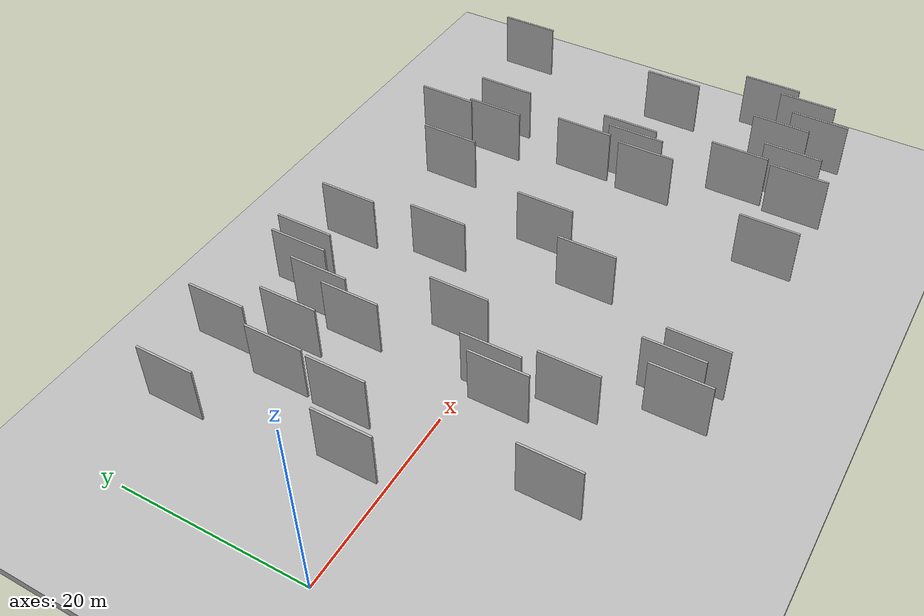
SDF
<?xml version="1.0" encoding="utf-8"?>

<sdf version="1.6">

   <world name="default">

      <gui fullscreen="0">

         <camera name="user_camera">

            <pose>-15 0 4.57585 0 0 0</pose>

            <view_controller>orbit</view_controller>

         </camera>

      </gui>

      <scene>

         <sky>

           <clouds>

             <speed>12</speed>

           </clouds>

         </sky>

         <ambient>0.4 0.4 0.4 1</ambient>

         <background>0.7 0.7 0.7 1</background>

         <shadows>1</shadows>

      </scene>

      <gravity>0 0 -9.8066</gravity>

      <magnetic_field>6e-06 2.3e-05 -4.2e-05</magnetic_field>

      <physics default="0" name="default_physics" type="ode">

         <ode>

            <solver>

               <type>quick</type>

               <iters>10</iters>

               <sor>1.0</sor>

               <use_dynamic_moi_rescaling>0</use_dynamic_moi_rescaling>

            </solver>

            <constraints>

               <cfm>0</cfm>

               <erp>0.2</erp>

               <contact_max_correcting_vel>100</contact_max_correcting_vel>

               <contact_surface_layer>0.001</contact_surface_layer>

            </constraints>

         </ode>

         <max_step_size>0.004</max_step_size>

         <real_time_factor>1</real_time_factor>

         <real_time_update_rate>250</real_time_update_rate>

      </physics>

      <light name="sun" type="directional">

         <cast_shadows>1</cast_shadows>

         <pose>0 0 10 0 0 0</pose>

         <diffuse>0.8 0.8 0.8 1</diffuse>

         <specular>0.2 0.2 0.2 1</specular>

         <attenuation>

            <range>1000</range>

            <constant>0.9</constant>

            <linear>0.01</linear>

            <quadratic>0.001</quadratic>

         </attenuation>

         <direction>-0.5 0.1 -0.9</direction>

      </light>

      <include>

         <name>ground_plane_1</name>

         <uri>model://HANNAS_ground_plane</uri>

         <pose>0 0 0  0 0 0</pose>

      </include>

      <include>

         <name>ground_plane_2</name>

         <uri>model://HANNAS_ground_plane</uri>

         <pose>100 0 0  0 0 0</pose>

      </include>

      <model name="HANNAS_wall_1">

         <static>1</static>

         <pose frame="">19.9747 -6.0298 5.0 0.000000 0.000000 1.570796</pose>

         <link name="link">

            <pose frame="">0 0 3.00 0 0 0</pose>

            <collision name="collision">

               <geometry>

                  <box>

                     <size>6.00 0.2 6.00</size>

                  </box>

               </geometry>

               <max_contacts>10</max_contacts>

               <surface>

                  <contact>

                     <ode/>

                  </contact>

                  <bounce/>

                  <friction>

                     <torsional>

                        <ode/>

                     </torsional>

                     <ode/>

                  </friction>

               </surface>

            </collision>

            <visual name="visual">

               <cast_shadows>0</cast_shadows>

               <geometry>

                  <box>

                     <size>6.00 0.2 6.00</size>

                  </box>

               </geometry>

               <material>

                  <script>

                     <uri>model://HANNAS_wall/materials/scripts</uri>

                     <uri>model://HANNAS_wall/materials/textures</uri>

                     <name>vrc/HANNAS_wall</name>

                  </script>

               </material>

            </visual>

            <self_collide>0</self_collide>

            <enable_wind>0</enable_wind>

            <kinematic>0</kinematic>

         </link>

      </model>

      <model name="HANNAS_wall_2">

         <static>1</static>

         <pose frame="">33.4990 8.2690 5.0 0.000000 0.000000 1.570796</pose>

         <link name="link">

            <pose frame="">0 0 3.00 0 0 0</pose>

            <collision name="collision">

               <geometry>

                  <box>

                     <size>6.00 0.2 6.00</size>

                  </box>

               </geometry>

               <max_contacts>10</max_contacts>

               <surface>

                  <contact>

                     <ode/>

                  </contact>

                  <bounce/>

                  <friction>

                     <torsional>

                        <ode/>

                     </torsional>

                     <ode/>

                  </friction>

               </surface>

            </collision>

            <visual name="visual">

               <cast_shadows>0</cast_shadows>

               <geometry>

                  <box>

                     <size>6.00 0.2 6.00</size>

                  </box>

               </geometry>

               <material>

                  <script>

                     <uri>model://HANNAS_wall/materials/scripts</uri>

                     <uri>model://HANNAS_wall/materials/textures</uri>

                     <name>vrc/HANNAS_wall</name>

                  </script>

               </material>

            </visual>

            <self_collide>0</self_collide>

            <enable_wind>0</enable_wind>

            <kinematic>0</kinematic>

         </link>

      </model>

      <model name="HANNAS_wall_3">

         <static>1</static>

         <pose frame="">36.4372 -6.0636 5.0 0.000000 0.000000 1.570796</pose>

         <link name="link">

            <pose frame="">0 0 3.00 0 0 0</pose>

            <collision name="collision">

               <geometry>

                  <box>

                     <size>6.00 0.2 6.00</size>

                  </box>

               </geometry>

               <max_contacts>10</max_contacts>

               <surface>

                  <contact>

                     <ode/>

                  </contact>

                  <bounce/>

                  <friction>

                     <torsional>

                        <ode/>

                     </torsional>

                     <ode/>

                  </friction>

               </surface>

            </collision>

            <visual name="visual">

               <cast_shadows>0</cast_shadows>

               <geometry>

                  <box>

                     <size>6.00 0.2 6.00</size>

                  </box>

               </geometry>

               <material>

                  <script>

                     <uri>model://HANNAS_wall/materials/scripts</uri>

                     <uri>model://HANNAS_wall/materials/textures</uri>

                     <name>vrc/HANNAS_wall</name>

                  </script>

               </material>

            </visual>

            <self_collide>0</self_collide>

            <enable_wind>0</enable_wind>

            <kinematic>0</kinematic>

         </link>

      </model>

      <model name="HANNAS_wall_4">

         <static>1</static>

         <pose frame="">57.0335 -13.0750 5.0 0.000000 0.000000 1.570796</pose>

         <link name="link">

            <pose frame="">0 0 3.00 0 0 0</pose>

            <collision name="collision">

               <geometry>

                  <box>

                     <size>6.00 0.2 6.00</size>

                  </box>

               </geometry>

               <max_contacts>10</max_contacts>

               <surface>

                  <contact>

                     <ode/>

                  </contact>

                  <bounce/>

                  <friction>

                     <torsional>

                        <ode/>

                     </torsional>

                     <ode/>

                  </friction>

               </surface>

            </collision>

            <visual name="visual">

               <cast_shadows>0</cast_shadows>

               <geometry>

                  <box>

                     <size>6.00 0.2 6.00</size>

                  </box>

               </geometry>

               <material>

                  <script>

                     <uri>model://HANNAS_wall/materials/scripts</uri>

                     <uri>model://HANNAS_wall/materials/textures</uri>

                     <name>vrc/HANNAS_wall</name>

                  </script>

               </material>

            </visual>

            <self_collide>0</self_collide>

            <enable_wind>0</enable_wind>

            <kinematic>0</kinematic>

         </link>

      </model>

      <model name="HANNAS_wall_5">

         <static>1</static>

         <pose frame="">17.3988 13.8152 5.0 0.000000 0.000000 1.570796</pose>

         <link name="link">

            <pose frame="">0 0 3.00 0 0 0</pose>

            <collision name="collision">

               <geometry>

                  <box>

                     <size>6.00 0.2 6.00</size>

                  </box>

               </geometry>

               <max_contacts>10</max_contacts>

               <surface>

                  <contact>

                     <ode/>

                  </contact>

                  <bounce/>

                  <friction>

                     <torsional>

                        <ode/>

                     </torsional>

                     <ode/>

                  </friction>

               </surface>

            </collision>

            <visual name="visual">

               <cast_shadows>0</cast_shadows>

               <geometry>

                  <box>

                     <size>6.00 0.2 6.00</size>

                  </box>

               </geometry>

               <material>

                  <script>

                     <uri>model://HANNAS_wall/materials/scripts</uri>

                     <uri>model://HANNAS_wall/materials/textures</uri>

                     <name>vrc/HANNAS_wall</name>

                  </script>

               </material>

            </visual>

            <self_collide>0</self_collide>

            <enable_wind>0</enable_wind>

            <kinematic>0</kinematic>

         </link>

      </model>

      <model name="HANNAS_wall_6">

         <static>1</static>

         <pose frame="">32.0261 17.6014 5.0 0.000000 0.000000 1.570796</pose>

         <link name="link">

            <pose frame="">0 0 3.00 0 0 0</pose>

            <collision name="collision">

               <geometry>

                  <box>

                     <size>6.00 0.2 6.00</size>

                  </box>

               </geometry>

               <max_contacts>10</max_contacts>

               <surface>

                  <contact>

                     <ode/>

                  </contact>

                  <bounce/>

                  <friction>

                     <torsional>

                        <ode/>

                     </torsional>

                     <ode/>

                  </friction>

               </surface>

            </collision>

            <visual name="visual">

               <cast_shadows>0</cast_shadows>

               <geometry>

                  <box>

                     <size>6.00 0.2 6.00</size>

                  </box>

               </geometry>

               <material>

                  <script>

                     <uri>model://HANNAS_wall/materials/scripts</uri>

                     <uri>model://HANNAS_wall/materials/textures</uri>

                     <name>vrc/HANNAS_wall</name>

                  </script>

               </material>

            </visual>

            <self_collide>0</self_collide>

            <enable_wind>0</enable_wind>

            <kinematic>0</kinematic>

         </link>

      </model>

      <model name="HANNAS_wall_7">

         <static>1</static>

         <pose frame="">55.4199 13.1233 5.0 0.000000 0.000000 1.570796</pose>

         <link name="link">

            <pose frame="">0 0 3.00 0 0 0</pose>

            <collision name="collision">

               <geometry>

                  <box>

                     <size>6.00 0.2 6.00</size>

                  </box>

               </geometry>

               <max_contacts>10</max_contacts>

               <surface>

                  <contact>

                     <ode/>

                  </contact>

                  <bounce/>

                  <friction>

                     <torsional>

                        <ode/>

                     </torsional>

                     <ode/>

                  </friction>

               </surface>

            </collision>

            <visual name="visual">

               <cast_shadows>0</cast_shadows>

               <geometry>

                  <box>

                     <size>6.00 0.2 6.00</size>

                  </box>

               </geometry>

               <material>

                  <script>

                     <uri>model://HANNAS_wall/materials/scripts</uri>

                     <uri>model://HANNAS_wall/materials/textures</uri>

                     <name>vrc/HANNAS_wall</name>

                  </script>

               </material>

            </visual>

            <self_collide>0</self_collide>

            <enable_wind>0</enable_wind>

            <kinematic>0</kinematic>

         </link>

      </model>

      <model name="HANNAS_wall_8">

         <static>1</static>

         <pose frame="">21.4446 -4.4740 5.0 0.000000 0.000000 1.570796</pose>

         <link name="link">

            <pose frame="">0 0 3.00 0 0 0</pose>

            <collision name="collision">

               <geometry>

                  <box>

                     <size>6.00 0.2 6.00</size>

                  </box>

               </geometry>

               <max_contacts>10</max_contacts>

               <surface>

                  <contact>

                     <ode/>

                  </contact>

                  <bounce/>

                  <friction>

                     <torsional>

                        <ode/>

                     </torsional>

                     <ode/>

                  </friction>

               </surface>

            </collision>

            <visual name="visual">

               <cast_shadows>0</cast_shadows>

               <geometry>

                  <box>

                     <size>6.00 0.2 6.00</size>

                  </box>

               </geometry>

               <material>

                  <script>

                     <uri>model://HANNAS_wall/materials/scripts</uri>

                     <uri>model://HANNAS_wall/materials/textures</uri>

                     <name>vrc/HANNAS_wall</name>

                  </script>

               </material>

            </visual>

            <self_collide>0</self_collide>

            <enable_wind>0</enable_wind>

            <kinematic>0</kinematic>

         </link>

      </model>

      <model name="HANNAS_wall_9">

         <static>1</static>

         <pose frame="">65.5510 -2.1626 5.0 0.000000 0.000000 1.570796</pose>

         <link name="link">

            <pose frame="">0 0 3.00 0 0 0</pose>

            <collision name="collision">

               <geometry>

                  <box>

                     <size>6.00 0.2 6.00</size>

                  </box>

               </geometry>

               <max_contacts>10</max_contacts>

               <surface>

                  <contact>

                     <ode/>

                  </contact>

                  <bounce/>

                  <friction>

                     <torsional>

                        <ode/>

                     </torsional>

                     <ode/>

                  </friction>

               </surface>

            </collision>

            <visual name="visual">

               <cast_shadows>0</cast_shadows>

               <geometry>

                  <box>

                     <size>6.00 0.2 6.00</size>

                  </box>

               </geometry>

               <material>

                  <script>

                     <uri>model://HANNAS_wall/materials/scripts</uri>

                     <uri>model://HANNAS_wall/materials/textures</uri>

                     <name>vrc/HANNAS_wall</name>

                  </script>

               </material>

            </visual>

            <self_collide>0</self_collide>

            <enable_wind>0</enable_wind>

            <kinematic>0</kinematic>

         </link>

      </model>

      <model name="HANNAS_wall_10">

         <static>1</static>

         <pose frame="">20.6326 9.4840 5.0 0.000000 0.000000 1.570796</pose>

         <link name="link">

            <pose frame="">0 0 3.00 0 0 0</pose>

            <collision name="collision">

               <geometry>

                  <box>

                     <size>6.00 0.2 6.00</size>

                  </box>

               </geometry>

               <max_contacts>10</max_contacts>

               <surface>

                  <contact>

                     <ode/>

                  </contact>

                  <bounce/>

                  <friction>

                     <torsional>

                        <ode/>

                     </torsional>

                     <ode/>

                  </friction>

               </surface>

            </collision>

            <visual name="visual">

               <cast_shadows>0</cast_shadows>

               <geometry>

                  <box>

                     <size>6.00 0.2 6.00</size>

                  </box>

               </geometry>

               <material>

                  <script>

                     <uri>model://HANNAS_wall/materials/scripts</uri>

                     <uri>model://HANNAS_wall/materials/textures</uri>

                     <name>vrc/HANNAS_wall</name>

                  </script>

               </material>

            </visual>

            <self_collide>0</self_collide>

            <enable_wind>0</enable_wind>

            <kinematic>0</kinematic>

         </link>

      </model>

      <model name="HANNAS_wall_11">

         <static>1</static>

         <pose frame="">40.2192 0.3089 5.0 0.000000 0.000000 1.570796</pose>

         <link name="link">

            <pose frame="">0 0 3.00 0 0 0</pose>

            <collision name="collision">

               <geometry>

                  <box>

                     <size>6.00 0.2 6.00</size>

                  </box>

               </geometry>

               <max_contacts>10</max_contacts>

               <surface>

                  <contact>

                     <ode/>

                  </contact>

                  <bounce/>

                  <friction>

                     <torsional>

                        <ode/>

                     </torsional>

                     <ode/>

                  </friction>

               </surface>

            </collision>

            <visual name="visual">

               <cast_shadows>0</cast_shadows>

               <geometry>

                  <box>

                     <size>6.00 0.2 6.00</size>

                  </box>

               </geometry>

               <material>

                  <script>

                     <uri>model://HANNAS_wall/materials/scripts</uri>

                     <uri>model://HANNAS_wall/materials/textures</uri>

                     <name>vrc/HANNAS_wall</name>

                  </script>

               </material>

            </visual>

            <self_collide>0</self_collide>

            <enable_wind>0</enable_wind>

            <kinematic>0</kinematic>

         </link>

      </model>

      <model name="HANNAS_wall_12">

         <static>1</static>

         <pose frame="">26.2267 -19.8197 5.0 0.000000 0.000000 1.570796</pose>

         <link name="link">

            <pose frame="">0 0 3.00 0 0 0</pose>

            <collision name="collision">

               <geometry>

                  <box>

                     <size>6.00 0.2 6.00</size>

                  </box>

               </geometry>

               <max_contacts>10</max_contacts>

               <surface>

                  <contact>

                     <ode/>

                  </contact>

                  <bounce/>

                  <friction>

                     <torsional>

                        <ode/>

                     </torsional>

                     <ode/>

                  </friction>

               </surface>

            </collision>

            <visual name="visual">

               <cast_shadows>0</cast_shadows>

               <geometry>

                  <box>

                     <size>6.00 0.2 6.00</size>

                  </box>

               </geometry>

               <material>

                  <script>

                     <uri>model://HANNAS_wall/materials/scripts</uri>

                     <uri>model://HANNAS_wall/materials/textures</uri>

                     <name>vrc/HANNAS_wall</name>

                  </script>

               </material>

            </visual>

            <self_collide>0</self_collide>

            <enable_wind>0</enable_wind>

            <kinematic>0</kinematic>

         </link>

      </model>

      <model name="HANNAS_wall_13">

         <static>1</static>

         <pose frame="">21.9411 13.8103 5.0 0.000000 0.000000 1.570796</pose>

         <link name="link">

            <pose frame="">0 0 3.00 0 0 0</pose>

            <collision name="collision">

               <geometry>

                  <box>

                     <size>6.00 0.2 6.00</size>

                  </box>

               </geometry>

               <max_contacts>10</max_contacts>

               <surface>

                  <contact>

                     <ode/>

                  </contact>

                  <bounce/>

                  <friction>

                     <torsional>

                        <ode/>

                     </torsional>

                     <ode/>

                  </friction>

               </surface>

            </collision>

            <visual name="visual">

               <cast_shadows>0</cast_shadows>

               <geometry>

                  <box>

                     <size>6.00 0.2 6.00</size>

                  </box>

               </geometry>

               <material>

                  <script>

                     <uri>model://HANNAS_wall/materials/scripts</uri>

                     <uri>model://HANNAS_wall/materials/textures</uri>

                     <name>vrc/HANNAS_wall</name>

                  </script>

               </material>

            </visual>

            <self_collide>0</self_collide>

            <enable_wind>0</enable_wind>

            <kinematic>0</kinematic>

         </link>

      </model>

      <model name="HANNAS_wall_14">

         <static>1</static>

         <pose frame="">24.0926 17.6528 5.0 0.000000 0.000000 1.570796</pose>

         <link name="link">

            <pose frame="">0 0 3.00 0 0 0</pose>

            <collision name="collision">

               <geometry>

                  <box>

                     <size>6.00 0.2 6.00</size>

                  </box>

               </geometry>

               <max_contacts>10</max_contacts>

               <surface>

                  <contact>

                     <ode/>

                  </contact>

                  <bounce/>

                  <friction>

                     <torsional>

                        <ode/>

                     </torsional>

                     <ode/>

                  </friction>

               </surface>

            </collision>

            <visual name="visual">

               <cast_shadows>0</cast_shadows>

               <geometry>

                  <box>

                     <size>6.00 0.2 6.00</size>

                  </box>

               </geometry>

               <material>

                  <script>

                     <uri>model://HANNAS_wall/materials/scripts</uri>

                     <uri>model://HANNAS_wall/materials/textures</uri>

                     <name>vrc/HANNAS_wall</name>

                  </script>

               </material>

            </visual>

            <self_collide>0</self_collide>

            <enable_wind>0</enable_wind>

            <kinematic>0</kinematic>

         </link>

      </model>

      <model name="HANNAS_wall_15">

         <static>1</static>

         <pose frame="">47.7738 -19.5898 5.0 0.000000 0.000000 1.570796</pose>

         <link name="link">

            <pose frame="">0 0 3.00 0 0 0</pose>

            <collision name="collision">

               <geometry>

                  <box>

                     <size>6.00 0.2 6.00</size>

                  </box>

               </geometry>

               <max_contacts>10</max_contacts>

               <surface>

                  <contact>

                     <ode/>

                  </contact>

                  <bounce/>

                  <friction>

                     <torsional>

                        <ode/>

                     </torsional>

                     <ode/>

                  </friction>

               </surface>

            </collision>

            <visual name="visual">

               <cast_shadows>0</cast_shadows>

               <geometry>

                  <box>

                     <size>6.00 0.2 6.00</size>

                  </box>

               </geometry>

               <material>

                  <script>

                     <uri>model://HANNAS_wall/materials/scripts</uri>

                     <uri>model://HANNAS_wall/materials/textures</uri>

                     <name>vrc/HANNAS_wall</name>

                  </script>

               </material>

            </visual>

            <self_collide>0</self_collide>

            <enable_wind>0</enable_wind>

            <kinematic>0</kinematic>

         </link>

      </model>

      <model name="HANNAS_wall_16">

         <static>1</static>

         <pose frame="">52.3528 -4.7699 5.0 0.000000 0.000000 1.570796</pose>

         <link name="link">

            <pose frame="">0 0 3.00 0 0 0</pose>

            <collision name="collision">

               <geometry>

                  <box>

                     <size>6.00 0.2 6.00</size>

                  </box>

               </geometry>

               <max_contacts>10</max_contacts>

               <surface>

                  <contact>

                     <ode/>

                  </contact>

                  <bounce/>

                  <friction>

                     <torsional>

                        <ode/>

                     </torsional>

                     <ode/>

                  </friction>

               </surface>

            </collision>

            <visual name="visual">

               <cast_shadows>0</cast_shadows>

               <geometry>

                  <box>

                     <size>6.00 0.2 6.00</size>

                  </box>

               </geometry>

               <material>

                  <script>

                     <uri>model://HANNAS_wall/materials/scripts</uri>

                     <uri>model://HANNAS_wall/materials/textures</uri>

                     <name>vrc/HANNAS_wall</name>

                  </script>

               </material>

            </visual>

            <self_collide>0</self_collide>

            <enable_wind>0</enable_wind>

            <kinematic>0</kinematic>

         </link>

      </model>

      <model name="HANNAS_wall_17">

         <static>1</static>

         <pose frame="">69.9324 -11.8928 5.0 0.000000 0.000000 1.570796</pose>

         <link name="link">

            <pose frame="">0 0 3.00 0 0 0</pose>

            <collision name="collision">

               <geometry>

                  <box>

                     <size>6.00 0.2 6.00</size>

                  </box>

               </geometry>

               <max_contacts>10</max_contacts>

               <surface>

                  <contact>

                     <ode/>

                  </contact>

                  <bounce/>

                  <friction>

                     <torsional>

                        <ode/>

                     </torsional>

                     <ode/>

                  </friction>

               </surface>

            </collision>

            <visual name="visual">

               <cast_shadows>0</cast_shadows>

               <geometry>

                  <box>

                     <size>6.00 0.2 6.00</size>

                  </box>

               </geometry>

               <material>

                  <script>

                     <uri>model://HANNAS_wall/materials/scripts</uri>

                     <uri>model://HANNAS_wall/materials/textures</uri>

                     <name>vrc/HANNAS_wall</name>

                  </script>

               </material>

            </visual>

            <self_collide>0</self_collide>

            <enable_wind>0</enable_wind>

            <kinematic>0</kinematic>

         </link>

      </model>

      <model name="HANNAS_wall_18">

         <static>1</static>

         <pose frame="">13.0340 12.0443 5.0 0.000000 0.000000 1.570796</pose>

         <link name="link">

            <pose frame="">0 0 3.00 0 0 0</pose>

            <collision name="collision">

               <geometry>

                  <box>

                     <size>6.00 0.2 6.00</size>

                  </box>

               </geometry>

               <max_contacts>10</max_contacts>

               <surface>

                  <contact>

                     <ode/>

                  </contact>

                  <bounce/>

                  <friction>

                     <torsional>

                        <ode/>

                     </torsional>

                     <ode/>

                  </friction>

               </surface>

            </collision>

            <visual name="visual">

               <cast_shadows>0</cast_shadows>

               <geometry>

                  <box>

                     <size>6.00 0.2 6.00</size>

                  </box>

               </geometry>

               <material>

                  <script>

                     <uri>model://HANNAS_wall/materials/scripts</uri>

                     <uri>model://HANNAS_wall/materials/textures</uri>

                     <name>vrc/HANNAS_wall</name>

                  </script>

               </material>

            </visual>

            <self_collide>0</self_collide>

            <enable_wind>0</enable_wind>

            <kinematic>0</kinematic>

         </link>

      </model>

      <model name="HANNAS_wall_19">

         <static>1</static>

         <pose frame="">67.6805 16.8555 5.0 0.000000 0.000000 1.570796</pose>

         <link name="link">

            <pose frame="">0 0 3.00 0 0 0</pose>

            <collision name="collision">

               <geometry>

                  <box>

                     <size>6.00 0.2 6.00</size>

                  </box>

               </geometry>

               <max_contacts>10</max_contacts>

               <surface>

                  <contact>

                     <ode/>

                  </contact>

                  <bounce/>

                  <friction>

                     <torsional>

                        <ode/>

                     </torsional>

                     <ode/>

                  </friction>

               </surface>

            </collision>

            <visual name="visual">

               <cast_shadows>0</cast_shadows>

               <geometry>

                  <box>

                     <size>6.00 0.2 6.00</size>

                  </box>

               </geometry>

               <material>

                  <script>

                     <uri>model://HANNAS_wall/materials/scripts</uri>

                     <uri>model://HANNAS_wall/materials/textures</uri>

                     <name>vrc/HANNAS_wall</name>

                  </script>

               </material>

            </visual>

            <self_collide>0</self_collide>

            <enable_wind>0</enable_wind>

            <kinematic>0</kinematic>

         </link>

      </model>

      <model name="HANNAS_wall_20">

         <static>1</static>

         <pose frame="">54.5325 -2.6763 5.0 0.000000 0.000000 1.570796</pose>

         <link name="link">

            <pose frame="">0 0 3.00 0 0 0</pose>

            <collision name="collision">

               <geometry>

                  <box>

                     <size>6.00 0.2 6.00</size>

                  </box>

               </geometry>

               <max_contacts>10</max_contacts>

               <surface>

                  <contact>

                     <ode/>

                  </contact>

                  <bounce/>

                  <friction>

                     <torsional>

                        <ode/>

                     </torsional>

                     <ode/>

                  </friction>

               </surface>

            </collision>

            <visual name="visual">

               <cast_shadows>0</cast_shadows>

               <geometry>

                  <box>

                     <size>6.00 0.2 6.00</size>

                  </box>

               </geometry>

               <material>

                  <script>

                     <uri>model://HANNAS_wall/materials/scripts</uri>

                     <uri>model://HANNAS_wall/materials/textures</uri>

                     <name>vrc/HANNAS_wall</name>

                  </script>

               </material>

            </visual>

            <self_collide>0</self_collide>

            <enable_wind>0</enable_wind>

            <kinematic>0</kinematic>

         </link>

      </model>

      <model name="HANNAS_wall_21">

         <static>1</static>

         <pose frame="">6.5434 18.4012 5.0 0.000000 0.000000 1.570796</pose>

         <link name="link">

            <pose frame="">0 0 3.00 0 0 0</pose>

            <collision name="collision">

               <geometry>

                  <box>

                     <size>6.00 0.2 6.00</size>

                  </box>

               </geometry>

               <max_contacts>10</max_contacts>

               <surface>

                  <contact>

                     <ode/>

                  </contact>

                  <bounce/>

                  <friction>

                     <torsional>

                        <ode/>

                     </torsional>

                     <ode/>

                  </friction>

               </surface>

            </collision>

            <visual name="visual">

               <cast_shadows>0</cast_shadows>

               <geometry>

                  <box>

                     <size>6.00 0.2 6.00</size>

                  </box>

               </geometry>

               <material>

                  <script>

                     <uri>model://HANNAS_wall/materials/scripts</uri>

                     <uri>model://HANNAS_wall/materials/textures</uri>

                     <name>vrc/HANNAS_wall</name>

                  </script>

               </material>

            </visual>

            <self_collide>0</self_collide>

            <enable_wind>0</enable_wind>

            <kinematic>0</kinematic>

         </link>

      </model>

      <model name="HANNAS_wall_22">

         <static>1</static>

         <pose frame="">13.4395 -14.3826 5.0 0.000000 0.000000 1.570796</pose>

         <link name="link">

            <pose frame="">0 0 3.00 0 0 0</pose>

            <collision name="collision">

               <geometry>

                  <box>

                     <size>6.00 0.2 6.00</size>

                  </box>

               </geometry>

               <max_contacts>10</max_contacts>

               <surface>

                  <contact>

                     <ode/>

                  </contact>

                  <bounce/>

                  <friction>

                     <torsional>

                        <ode/>

                     </torsional>

                     <ode/>

                  </friction>

               </surface>

            </collision>

            <visual name="visual">

               <cast_shadows>0</cast_shadows>

               <geometry>

                  <box>

                     <size>6.00 0.2 6.00</size>

                  </box>

               </geometry>

               <material>

                  <script>

                     <uri>model://HANNAS_wall/materials/scripts</uri>

                     <uri>model://HANNAS_wall/materials/textures</uri>

                     <name>vrc/HANNAS_wall</name>

                  </script>

               </material>

            </visual>

            <self_collide>0</self_collide>

            <enable_wind>0</enable_wind>

            <kinematic>0</kinematic>

         </link>

      </model>

      <model name="HANNAS_wall_23">

         <static>1</static>

         <pose frame="">50.9096 17.8241 5.0 0.000000 0.000000 1.570796</pose>

         <link name="link">

            <pose frame="">0 0 3.00 0 0 0</pose>

            <collision name="collision">

               <geometry>

                  <box>

                     <size>6.00 0.2 6.00</size>

                  </box>

               </geometry>

               <max_contacts>10</max_contacts>

               <surface>

                  <contact>

                     <ode/>

                  </contact>

                  <bounce/>

                  <friction>

                     <torsional>

                        <ode/>

                     </torsional>

                     <ode/>

                  </friction>

               </surface>

            </collision>

            <visual name="visual">

               <cast_shadows>0</cast_shadows>

               <geometry>

                  <box>

                     <size>6.00 0.2 6.00</size>

                  </box>

               </geometry>

               <material>

                  <script>

                     <uri>model://HANNAS_wall/materials/scripts</uri>

                     <uri>model://HANNAS_wall/materials/textures</uri>

                     <name>vrc/HANNAS_wall</name>

                  </script>

               </material>

            </visual>

            <self_collide>0</self_collide>

            <enable_wind>0</enable_wind>

            <kinematic>0</kinematic>

         </link>

      </model>

      <model name="HANNAS_wall_24">

         <static>1</static>

         <pose frame="">52.9099 2.4454 5.0 0.000000 0.000000 1.570796</pose>

         <link name="link">

            <pose frame="">0 0 3.00 0 0 0</pose>

            <collision name="collision">

               <geometry>

                  <box>

                     <size>6.00 0.2 6.00</size>

                  </box>

               </geometry>

               <max_contacts>10</max_contacts>

               <surface>

                  <contact>

                     <ode/>

                  </contact>

                  <bounce/>

                  <friction>

                     <torsional>

                        <ode/>

                     </torsional>

                     <ode/>

                  </friction>

               </surface>

            </collision>

            <visual name="visual">

               <cast_shadows>0</cast_shadows>

               <geometry>

                  <box>

                     <size>6.00 0.2 6.00</size>

                  </box>

               </geometry>

               <material>

                  <script>

                     <uri>model://HANNAS_wall/materials/scripts</uri>

                     <uri>model://HANNAS_wall/materials/textures</uri>

                     <name>vrc/HANNAS_wall</name>

                  </script>

               </material>

            </visual>

            <self_collide>0</self_collide>

            <enable_wind>0</enable_wind>

            <kinematic>0</kinematic>

         </link>

      </model>

      <model name="HANNAS_wall_25">

         <static>1</static>

         <pose frame="">12.7392 5.3636 5.0 0.000000 0.000000 1.570796</pose>

         <link name="link">

            <pose frame="">0 0 3.00 0 0 0</pose>

            <collision name="collision">

               <geometry>

                  <box>

                     <size>6.00 0.2 6.00</size>

                  </box>

               </geometry>

               <max_contacts>10</max_contacts>

               <surface>

                  <contact>

                     <ode/>

                  </contact>

                  <bounce/>

                  <friction>

                     <torsional>

                        <ode/>

                     </torsional>

                     <ode/>

                  </friction>

               </surface>

            </collision>

            <visual name="visual">

               <cast_shadows>0</cast_shadows>

               <geometry>

                  <box>

                     <size>6.00 0.2 6.00</size>

                  </box>

               </geometry>

               <material>

                  <script>

                     <uri>model://HANNAS_wall/materials/scripts</uri>

                     <uri>model://HANNAS_wall/materials/textures</uri>

                     <name>vrc/HANNAS_wall</name>

                  </script>

               </material>

            </visual>

            <self_collide>0</self_collide>

            <enable_wind>0</enable_wind>

            <kinematic>0</kinematic>

         </link>

      </model>

      <model name="HANNAS_wall_26">

         <static>1</static>

         <pose frame="">45.0470 13.9309 5.0 0.000000 0.000000 1.570796</pose>

         <link name="link">

            <pose frame="">0 0 3.00 0 0 0</pose>

            <collision name="collision">

               <geometry>

                  <box>

                     <size>6.00 0.2 6.00</size>

                  </box>

               </geometry>

               <max_contacts>10</max_contacts>

               <surface>

                  <contact>

                     <ode/>

                  </contact>

                  <bounce/>

                  <friction>

                     <torsional>

                        <ode/>

                     </torsional>

                     <ode/>

                  </friction>

               </surface>

            </collision>

            <visual name="visual">

               <cast_shadows>0</cast_shadows>

               <geometry>

                  <box>

                     <size>6.00 0.2 6.00</size>

                  </box>

               </geometry>

               <material>

                  <script>

                     <uri>model://HANNAS_wall/materials/scripts</uri>

                     <uri>model://HANNAS_wall/materials/textures</uri>

                     <name>vrc/HANNAS_wall</name>

                  </script>

               </material>

            </visual>

            <self_collide>0</self_collide>

            <enable_wind>0</enable_wind>

            <kinematic>0</kinematic>

         </link>

      </model>

      <model name="HANNAS_wall_27">

         <static>1</static>

         <pose frame="">63.4873 -15.1442 5.0 0.000000 0.000000 1.570796</pose>

         <link name="link">

            <pose frame="">0 0 3.00 0 0 0</pose>

            <collision name="collision">

               <geometry>

                  <box>

                     <size>6.00 0.2 6.00</size>

                  </box>

               </geometry>

               <max_contacts>10</max_contacts>

               <surface>

                  <contact>

                     <ode/>

                  </contact>

                  <bounce/>

                  <friction>

                     <torsional>

                        <ode/>

                     </torsional>

                     <ode/>

                  </friction>

               </surface>

            </collision>

            <visual name="visual">

               <cast_shadows>0</cast_shadows>

               <geometry>

                  <box>

                     <size>6.00 0.2 6.00</size>

                  </box>

               </geometry>

               <material>

                  <script>

                     <uri>model://HANNAS_wall/materials/scripts</uri>

                     <uri>model://HANNAS_wall/materials/textures</uri>

                     <name>vrc/HANNAS_wall</name>

                  </script>

               </material>

            </visual>

            <self_collide>0</self_collide>

            <enable_wind>0</enable_wind>

            <kinematic>0</kinematic>

         </link>

      </model>

      <model name="HANNAS_wall_28">

         <static>1</static>

         <pose frame="">8.3364 1.6621 5.0 0.000000 0.000000 1.570796</pose>

         <link name="link">

            <pose frame="">0 0 3.00 0 0 0</pose>

            <collision name="collision">

               <geometry>

                  <box>

                     <size>6.00 0.2 6.00</size>

                  </box>

               </geometry>

               <max_contacts>10</max_contacts>

               <surface>

                  <contact>

                     <ode/>

                  </contact>

                  <bounce/>

                  <friction>

                     <torsional>

                        <ode/>

                     </torsional>

                     <ode/>

                  </friction>

               </surface>

            </collision>

            <visual name="visual">

               <cast_shadows>0</cast_shadows>

               <geometry>

                  <box>

                     <size>6.00 0.2 6.00</size>

                  </box>

               </geometry>

               <material>

                  <script>

                     <uri>model://HANNAS_wall/materials/scripts</uri>

                     <uri>model://HANNAS_wall/materials/textures</uri>

                     <name>vrc/HANNAS_wall</name>

                  </script>

               </material>

            </visual>

            <self_collide>0</self_collide>

            <enable_wind>0</enable_wind>

            <kinematic>0</kinematic>

         </link>

      </model>

      <model name="HANNAS_wall_29">

         <static>1</static>

         <pose frame="">59.5110 -17.8030 5.0 0.000000 0.000000 1.570796</pose>

         <link name="link">

            <pose frame="">0 0 3.00 0 0 0</pose>

            <collision name="collision">

               <geometry>

                  <box>

                     <size>6.00 0.2 6.00</size>

                  </box>

               </geometry>

               <max_contacts>10</max_contacts>

               <surface>

                  <contact>

                     <ode/>

                  </contact>

                  <bounce/>

                  <friction>

                     <torsional>

                        <ode/>

                     </torsional>

                     <ode/>

                  </friction>

               </surface>

            </collision>

            <visual name="visual">

               <cast_shadows>0</cast_shadows>

               <geometry>

                  <box>

                     <size>6.00 0.2 6.00</size>

                  </box>

               </geometry>

               <material>

                  <script>

                     <uri>model://HANNAS_wall/materials/scripts</uri>

                     <uri>model://HANNAS_wall/materials/textures</uri>

                     <name>vrc/HANNAS_wall</name>

                  </script>

               </material>

            </visual>

            <self_collide>0</self_collide>

            <enable_wind>0</enable_wind>

            <kinematic>0</kinematic>

         </link>

      </model>

      <model name="HANNAS_wall_30">

         <static>1</static>

         <pose frame="">56.4428 -19.5251 5.0 0.000000 0.000000 1.570796</pose>

         <link name="link">

            <pose frame="">0 0 3.00 0 0 0</pose>

            <collision name="collision">

               <geometry>

                  <box>

                     <size>6.00 0.2 6.00</size>

                  </box>

               </geometry>

               <max_contacts>10</max_contacts>

               <surface>

                  <contact>

                     <ode/>

                  </contact>

                  <bounce/>

                  <friction>

                     <torsional>

                        <ode/>

                     </torsional>

                     <ode/>

                  </friction>

               </surface>

            </collision>

            <visual name="visual">

               <cast_shadows>0</cast_shadows>

               <geometry>

                  <box>

                     <size>6.00 0.2 6.00</size>

                  </box>

               </geometry>

               <material>

                  <script>

                     <uri>model://HANNAS_wall/materials/scripts</uri>

                     <uri>model://HANNAS_wall/materials/textures</uri>

                     <name>vrc/HANNAS_wall</name>

                  </script>

               </material>

            </visual>

            <self_collide>0</self_collide>

            <enable_wind>0</enable_wind>

            <kinematic>0</kinematic>

         </link>

      </model>

      <model name="HANNAS_wall_31">

         <static>1</static>

         <pose frame="">22.7907 -11.2086 5.0 0.000000 0.000000 1.570796</pose>

         <link name="link">

            <pose frame="">0 0 3.00 0 0 0</pose>

            <collision name="collision">

               <geometry>

                  <box>

                     <size>6.00 0.2 6.00</size>

                  </box>

               </geometry>

               <max_contacts>10</max_contacts>

               <surface>

                  <contact>

                     <ode/>

                  </contact>

                  <bounce/>

                  <friction>

                     <torsional>

                        <ode/>

                     </torsional>

                     <ode/>

                  </friction>

               </surface>

            </collision>

            <visual name="visual">

               <cast_shadows>0</cast_shadows>

               <geometry>

                  <box>

                     <size>6.00 0.2 6.00</size>

                  </box>

               </geometry>

               <material>

                  <script>

                     <uri>model://HANNAS_wall/materials/scripts</uri>

                     <uri>model://HANNAS_wall/materials/textures</uri>

                     <name>vrc/HANNAS_wall</name>

                  </script>

               </material>

            </visual>

            <self_collide>0</self_collide>

            <enable_wind>0</enable_wind>

            <kinematic>0</kinematic>

         </link>

      </model>

      <model name="HANNAS_wall_32">

         <static>1</static>

         <pose frame="">68.6658 -16.2937 5.0 0.000000 0.000000 1.570796</pose>

         <link name="link">

            <pose frame="">0 0 3.00 0 0 0</pose>

            <collision name="collision">

               <geometry>

                  <box>

                     <size>6.00 0.2 6.00</size>

                  </box>

               </geometry>

               <max_contacts>10</max_contacts>

               <surface>

                  <contact>

                     <ode/>

                  </contact>

                  <bounce/>

                  <friction>

                     <torsional>

                        <ode/>

                     </torsional>

                     <ode/>

                  </friction>

               </surface>

            </collision>

            <visual name="visual">

               <cast_shadows>0</cast_shadows>

               <geometry>

                  <box>

                     <size>6.00 0.2 6.00</size>

                  </box>

               </geometry>

               <material>

                  <script>

                     <uri>model://HANNAS_wall/materials/scripts</uri>

                     <uri>model://HANNAS_wall/materials/textures</uri>

                     <name>vrc/HANNAS_wall</name>

                  </script>

               </material>

            </visual>

            <self_collide>0</self_collide>

            <enable_wind>0</enable_wind>

            <kinematic>0</kinematic>

         </link>

      </model>

      <model name="HANNAS_wall_33">

         <static>1</static>

         <pose frame="">51.3504 12.2305 5.0 0.000000 0.000000 1.570796</pose>

         <link name="link">

            <pose frame="">0 0 3.00 0 0 0</pose>

            <collision name="collision">

               <geometry>

                  <box>

                     <size>6.00 0.2 6.00</size>

                  </box>

               </geometry>

               <max_contacts>10</max_contacts>

               <surface>

                  <contact>

                     <ode/>

                  </contact>

                  <bounce/>

                  <friction>

                     <torsional>

                        <ode/>

                     </torsional>

                     <ode/>

                  </friction>

               </surface>

            </collision>

            <visual name="visual">

               <cast_shadows>0</cast_shadows>

               <geometry>

                  <box>

                     <size>6.00 0.2 6.00</size>

                  </box>

               </geometry>

               <material>

                  <script>

                     <uri>model://HANNAS_wall/materials/scripts</uri>

                     <uri>model://HANNAS_wall/materials/textures</uri>

                     <name>vrc/HANNAS_wall</name>

                  </script>

               </material>

            </visual>

            <self_collide>0</self_collide>

            <enable_wind>0</enable_wind>

            <kinematic>0</kinematic>

         </link>

      </model>

      <model name="HANNAS_wall_34">

         <static>1</static>

         <pose frame="">26.0771 18.4415 5.0 0.000000 0.000000 1.570796</pose>

         <link name="link">

            <pose frame="">0 0 3.00 0 0 0</pose>

            <collision name="collision">

               <geometry>

                  <box>

                     <size>6.00 0.2 6.00</size>

                  </box>

               </geometry>

               <max_contacts>10</max_contacts>

               <surface>

                  <contact>

                     <ode/>

                  </contact>

                  <bounce/>

                  <friction>

                     <torsional>

                        <ode/>

                     </torsional>

                     <ode/>

                  </friction>

               </surface>

            </collision>

            <visual name="visual">

               <cast_shadows>0</cast_shadows>

               <geometry>

                  <box>

                     <size>6.00 0.2 6.00</size>

                  </box>

               </geometry>

               <material>

                  <script>

                     <uri>model://HANNAS_wall/materials/scripts</uri>

                     <uri>model://HANNAS_wall/materials/textures</uri>

                     <name>vrc/HANNAS_wall</name>

                  </script>

               </material>

            </visual>

            <self_collide>0</self_collide>

            <enable_wind>0</enable_wind>

            <kinematic>0</kinematic>

         </link>

      </model>

      <model name="HANNAS_wall_35">

         <static>1</static>

         <pose frame="">55.7645 -1.4706 5.0 0.000000 0.000000 1.570796</pose>

         <link name="link">

            <pose frame="">0 0 3.00 0 0 0</pose>

            <collision name="collision">

               <geometry>

                  <box>

                     <size>6.00 0.2 6.00</size>

                  </box>

               </geometry>

               <max_contacts>10</max_contacts>

               <surface>

                  <contact>

                     <ode/>

                  </contact>

                  <bounce/>

                  <friction>

                     <torsional>

                        <ode/>

                     </torsional>

                     <ode/>

                  </friction>

               </surface>

            </collision>

            <visual name="visual">

               <cast_shadows>0</cast_shadows>

               <geometry>

                  <box>

                     <size>6.00 0.2 6.00</size>

                  </box>

               </geometry>

               <material>

                  <script>

                     <uri>model://HANNAS_wall/materials/scripts</uri>

                     <uri>model://HANNAS_wall/materials/textures</uri>

                     <name>vrc/HANNAS_wall</name>

                  </script>

               </material>

            </visual>

            <self_collide>0</self_collide>

            <enable_wind>0</enable_wind>

            <kinematic>0</kinematic>

         </link>

      </model>

      <model name="HANNAS_wall_36">

         <static>1</static>

         <pose frame="">30.6302 -19.5618 5.0 0.000000 0.000000 1.570796</pose>

         <link name="link">

            <pose frame="">0 0 3.00 0 0 0</pose>

            <collision name="collision">

               <geometry>

                  <box>

                     <size>6.00 0.2 6.00</size>

                  </box>

               </geometry>

               <max_contacts>10</max_contacts>

               <surface>

                  <contact>

                     <ode/>

                  </contact>

                  <bounce/>

                  <friction>

                     <torsional>

                        <ode/>

                     </torsional>

                     <ode/>

                  </friction>

               </surface>

            </collision>

            <visual name="visual">

               <cast_shadows>0</cast_shadows>

               <geometry>

                  <box>

                     <size>6.00 0.2 6.00</size>

                  </box>

               </geometry>

               <material>

                  <script>

                     <uri>model://HANNAS_wall/materials/scripts</uri>

                     <uri>model://HANNAS_wall/materials/textures</uri>

                     <name>vrc/HANNAS_wall</name>

                  </script>

               </material>

            </visual>

            <self_collide>0</self_collide>

            <enable_wind>0</enable_wind>

            <kinematic>0</kinematic>

         </link>

      </model>

      <model name="HANNAS_wall_37">

         <static>1</static>

         <pose frame="">28.5898 -18.2045 5.0 0.000000 0.000000 1.570796</pose>

         <link name="link">

            <pose frame="">0 0 3.00 0 0 0</pose>

            <collision name="collision">

               <geometry>

                  <box>

                     <size>6.00 0.2 6.00</size>

                  </box>

               </geometry>

               <max_contacts>10</max_contacts>

               <surface>

                  <contact>

                     <ode/>

                  </contact>

                  <bounce/>

                  <friction>

                     <torsional>

                        <ode/>

                     </torsional>

                     <ode/>

                  </friction>

               </surface>

            </collision>

            <visual name="visual">

               <cast_shadows>0</cast_shadows>

               <geometry>

                  <box>

                     <size>6.00 0.2 6.00</size>

                  </box>

               </geometry>

               <material>

                  <script>

                     <uri>model://HANNAS_wall/materials/scripts</uri>

                     <uri>model://HANNAS_wall/materials/textures</uri>

                     <name>vrc/HANNAS_wall</name>

                  </script>

               </material>

            </visual>

            <self_collide>0</self_collide>

            <enable_wind>0</enable_wind>

            <kinematic>0</kinematic>

         </link>

      </model>

      <model name="HANNAS_wall_38">

         <static>1</static>

         <pose frame="">14.5950 19.5514 5.0 0.000000 0.000000 1.570796</pose>

         <link name="link">

            <pose frame="">0 0 3.00 0 0 0</pose>

            <collision name="collision">

               <geometry>

                  <box>

                     <size>6.00 0.2 6.00</size>

                  </box>

               </geometry>

               <max_contacts>10</max_contacts>

               <surface>

                  <contact>

                     <ode/>

                  </contact>

                  <bounce/>

                  <friction>

                     <torsional>

                        <ode/>

                     </torsional>

                     <ode/>

                  </friction>

               </surface>

            </collision>

            <visual name="visual">

               <cast_shadows>0</cast_shadows>

               <geometry>

                  <box>

                     <size>6.00 0.2 6.00</size>

                  </box>

               </geometry>

               <material>

                  <script>

                     <uri>model://HANNAS_wall/materials/scripts</uri>

                     <uri>model://HANNAS_wall/materials/textures</uri>

                     <name>vrc/HANNAS_wall</name>

                  </script>

               </material>

            </visual>

            <self_collide>0</self_collide>

            <enable_wind>0</enable_wind>

            <kinematic>0</kinematic>

         </link>

      </model>

      <model name="HANNAS_wall_39">

         <static>1</static>

         <pose frame="">25.9151 1.3562 5.0 0.000000 0.000000 1.570796</pose>

         <link name="link">

            <pose frame="">0 0 3.00 0 0 0</pose>

            <collision name="collision">

               <geometry>

                  <box>

                     <size>6.00 0.2 6.00</size>

                  </box>

               </geometry>

               <max_contacts>10</max_contacts>

               <surface>

                  <contact>

                     <ode/>

                  </contact>

                  <bounce/>

                  <friction>

                     <torsional>

                        <ode/>

                     </torsional>

                     <ode/>

                  </friction>

               </surface>

            </collision>

            <visual name="visual">

               <cast_shadows>0</cast_shadows>

               <geometry>

                  <box>

                     <size>6.00 0.2 6.00</size>

                  </box>

               </geometry>

               <material>

                  <script>

                     <uri>model://HANNAS_wall/materials/scripts</uri>

                     <uri>model://HANNAS_wall/materials/textures</uri>

                     <name>vrc/HANNAS_wall</name>

                  </script>

               </material>

            </visual>

            <self_collide>0</self_collide>

            <enable_wind>0</enable_wind>

            <kinematic>0</kinematic>

         </link>

      </model>

      <model name="HANNAS_wall_40">

         <static>1</static>

         <pose frame="">66.0312 -18.4664 5.0 0.000000 0.000000 1.570796</pose>

         <link name="link">

            <pose frame="">0 0 3.00 0 0 0</pose>

            <collision name="collision">

               <geometry>

                  <box>

                     <size>6.00 0.2 6.00</size>

                  </box>

               </geometry>

               <max_contacts>10</max_contacts>

               <surface>

                  <contact>

                     <ode/>

                  </contact>

                  <bounce/>

                  <friction>

                     <torsional>

                        <ode/>

                     </torsional>

                     <ode/>

                  </friction>

               </surface>

            </collision>

            <visual name="visual">

               <cast_shadows>0</cast_shadows>

               <geometry>

                  <box>

                     <size>6.00 0.2 6.00</size>

                  </box>

               </geometry>

               <material>

                  <script>

                     <uri>model://HANNAS_wall/materials/scripts</uri>

                     <uri>model://HANNAS_wall/materials/textures</uri>

                     <name>vrc/HANNAS_wall</name>

                  </script>

               </material>

            </visual>

            <self_collide>0</self_collide>

            <enable_wind>0</enable_wind>

            <kinematic>0</kinematic>

         </link>

      </model>

   </world>

</sdf>
